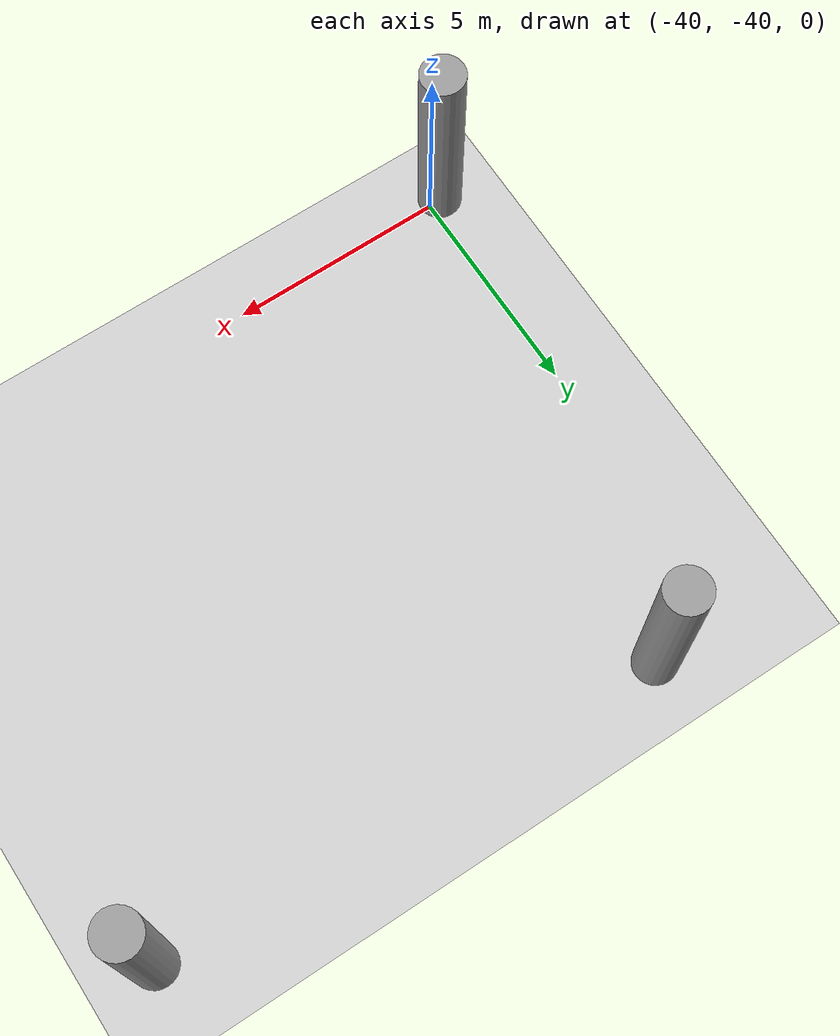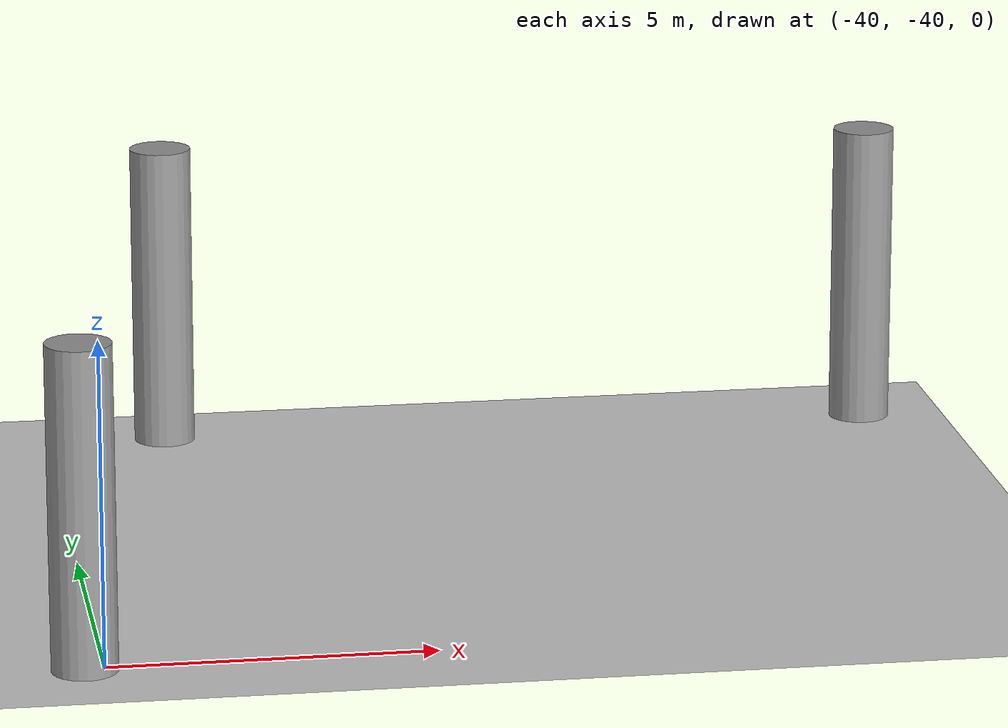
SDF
<sdf version="1.7">
 <world name="default">
  <model name="ground_plane">
   <static>1</static>
   <link name="link">
    <collision name="collision">
     <geometry><plane><normal>0 0 1</normal><size>100 100</size></plane></geometry>
     <surface><friction><ode><mu>100</mu><mu2>50</mu2></ode></friction></surface>
    </collision>
    <visual name="visual">
     <cast_shadows>0</cast_shadows>
     <geometry><plane><normal>0 0 1</normal><size>100 100</size></plane></geometry>
     <material>
      <script><uri>file://media/materials/scripts/gazebo.material</uri><name>Gazebo/Grey</name></script>
     </material>
    </visual>
   </link>
  </model>
  <model name="cylinder5_clone_19">
   <link name="link">
    <inertial>
     <mass>1</mass>
     <inertia><ixx>0.145833</ixx><ixy>0</ixy><ixz>0</ixz><iyy>0.145833</iyy><iyz>0</iyz><izz>0.125</izz></inertia>
    </inertial>
    <visual name="visual">
     <geometry><cylinder><radius>0.5</radius><length>5</length></cylinder></geometry>
     <material>
      <script><name>Gazebo/Grey</name><uri>file://media/materials/scripts/gazebo.material</uri></script>
      <shader type="pixel"><normal_map>__default__</normal_map></shader>
      <ambient>0.3 0.3 0.3 1</ambient>
      <diffuse>0.7 0.7 0.7 1</diffuse>
      <specular>0.01 0.01 0.01 1</specular>
      <emissive>0 0 0 1</emissive>
     </material>
    </visual>
    <collision name="collision">
     <geometry><cylinder><radius>0.5</radius><length>5</length></cylinder></geometry>
     <surface>
      <friction>
       <ode><mu>1</mu><mu2>1</mu2><fdir1>0 0 0</fdir1><slip1>0</slip1><slip2>0</slip2></ode>
       <torsional>
        <coefficient>1</coefficient>
        <patch_radius>0</patch_radius>
        <surface_radius>0</surface_radius>
        <use_patch_radius>1</use_patch_radius>
        <ode><slip>0</slip></ode>
       </torsional>
      </friction>
      <bounce><restitution_coefficient>0</restitution_coefficient><threshold>1e+06</threshold></bounce>
      <contact>
       <collide_without_contact>0</collide_without_contact>
       <collide_without_contact_bitmask>1</collide_without_contact_bitmask>
       <collide_bitmask>1</collide_bitmask>
       <ode>
        <soft_cfm>0</soft_cfm>
        <soft_erp>0.2</soft_erp>
        <kp>1e+13</kp>
        <kd>1</kd>
        <max_vel>0.01</max_vel>
        <min_depth>0</min_depth>
       </ode>
       <bullet>
        <split_impulse>1</split_impulse>
        <split_impulse_penetration_threshold>-0.01</split_impulse_penetration_threshold>
        <soft_cfm>0</soft_cfm>
        <soft_erp>0.2</soft_erp>
        <kp>1e+13</kp>
        <kd>1</kd>
       </bullet>
      </contact>
     </surface>
    </collision>
   </link>
   <static>0</static>
   <pose>-40.2974 -40.0678 2.5 0 -0 0</pose>
  </model>
  <model name="cylinder5_clone_20">
   <link name="link">
    <inertial>
     <mass>1</mass>
     <inertia><ixx>0.145833</ixx><ixy>0</ixy><ixz>0</ixz><iyy>0.145833</iyy><iyz>0</iyz><izz>0.125</izz></inertia>
    </inertial>
    <visual name="visual">
     <geometry><cylinder><radius>0.5</radius><length>5</length></cylinder></geometry>
     <material>
      <script><name>Gazebo/Grey</name><uri>file://media/materials/scripts/gazebo.material</uri></script>
      <shader type="pixel"><normal_map>__default__</normal_map></shader>
      <ambient>0.3 0.3 0.3 1</ambient>
      <diffuse>0.7 0.7 0.7 1</diffuse>
      <specular>0.01 0.01 0.01 1</specular>
      <emissive>0 0 0 1</emissive>
     </material>
    </visual>
    <collision name="collision">
     <geometry><cylinder><radius>0.5</radius><length>5</length></cylinder></geometry>
     <surface>
      <friction>
       <ode><mu>1</mu><mu2>1</mu2><fdir1>0 0 0</fdir1><slip1>0</slip1><slip2>0</slip2></ode>
       <torsional>
        <coefficient>1</coefficient>
        <patch_radius>0</patch_radius>
        <surface_radius>0</surface_radius>
        <use_patch_radius>1</use_patch_radius>
        <ode><slip>0</slip></ode>
       </torsional>
      </friction>
      <bounce><restitution_coefficient>0</restitution_coefficient><threshold>1e+06</threshold></bounce>
      <contact>
       <collide_without_contact>0</collide_without_contact>
       <collide_without_contact_bitmask>1</collide_without_contact_bitmask>
       <collide_bitmask>1</collide_bitmask>
       <ode>
        <soft_cfm>0</soft_cfm>
        <soft_erp>0.2</soft_erp>
        <kp>1e+13</kp>
        <kd>1</kd>
        <max_vel>0.01</max_vel>
        <min_depth>0</min_depth>
       </ode>
       <bullet>
        <split_impulse>1</split_impulse>
        <split_impulse_penetration_threshold>-0.01</split_impulse_penetration_threshold>
        <soft_cfm>0</soft_cfm>
        <soft_erp>0.2</soft_erp>
        <kp>1e+13</kp>
        <kd>1</kd>
       </bullet>
      </contact>
     </surface>
    </collision>
   </link>
   <static>0</static>
   <pose>-38 -28.511 2.5 0 -0 0</pose>
  </model>
  <model name="cylinder5_clone_21_clone">
   <link name="link">
    <inertial>
     <mass>1</mass>
     <inertia><ixx>0.145833</ixx><ixy>0</ixy><ixz>0</ixz><iyy>0.145833</iyy><iyz>0</iyz><izz>0.125</izz></inertia>
    </inertial>
    <visual name="visual">
     <geometry><cylinder><radius>0.5</radius><length>5</length></cylinder></geometry>
     <material>
      <script><name>Gazebo/Grey</name><uri>file://media/materials/scripts/gazebo.material</uri></script>
      <shader type="pixel"><normal_map>__default__</normal_map></shader>
      <ambient>0.3 0.3 0.3 1</ambient>
      <diffuse>0.7 0.7 0.7 1</diffuse>
      <specular>0.01 0.01 0.01 1</specular>
      <emissive>0 0 0 1</emissive>
     </material>
    </visual>
    <collision name="collision">
     <geometry><cylinder><radius>0.5</radius><length>5</length></cylinder></geometry>
     <surface>
      <friction>
       <ode><mu>1</mu><mu2>1</mu2><fdir1>0 0 0</fdir1><slip1>0</slip1><slip2>0</slip2></ode>
       <torsional>
        <coefficient>1</coefficient>
        <patch_radius>0</patch_radius>
        <surface_radius>0</surface_radius>
        <use_patch_radius>1</use_patch_radius>
        <ode><slip>0</slip></ode>
       </torsional>
      </friction>
      <bounce><restitution_coefficient>0</restitution_coefficient><threshold>1e+06</threshold></bounce>
      <contact>
       <collide_without_contact>0</collide_without_contact>
       <collide_without_contact_bitmask>1</collide_without_contact_bitmask>
       <collide_bitmask>1</collide_bitmask>
       <ode>
        <soft_cfm>0</soft_cfm>
        <soft_erp>0.2</soft_erp>
        <kp>1e+13</kp>
        <kd>1</kd>
        <max_vel>0.01</max_vel>
        <min_depth>0</min_depth>
       </ode>
       <bullet>
        <split_impulse>1</split_impulse>
        <split_impulse_penetration_threshold>-0.01</split_impulse_penetration_threshold>
        <soft_cfm>0</soft_cfm>
        <soft_erp>0.2</soft_erp>
        <kp>1e+13</kp>
        <kd>1</kd>
       </bullet>
      </contact>
     </surface>
    </collision>
   </link>
   <static>0</static>
   <pose>-26.1987 -28.9106 2.5 0 -0 0</pose>
  </model>
 </world>
</sdf>
